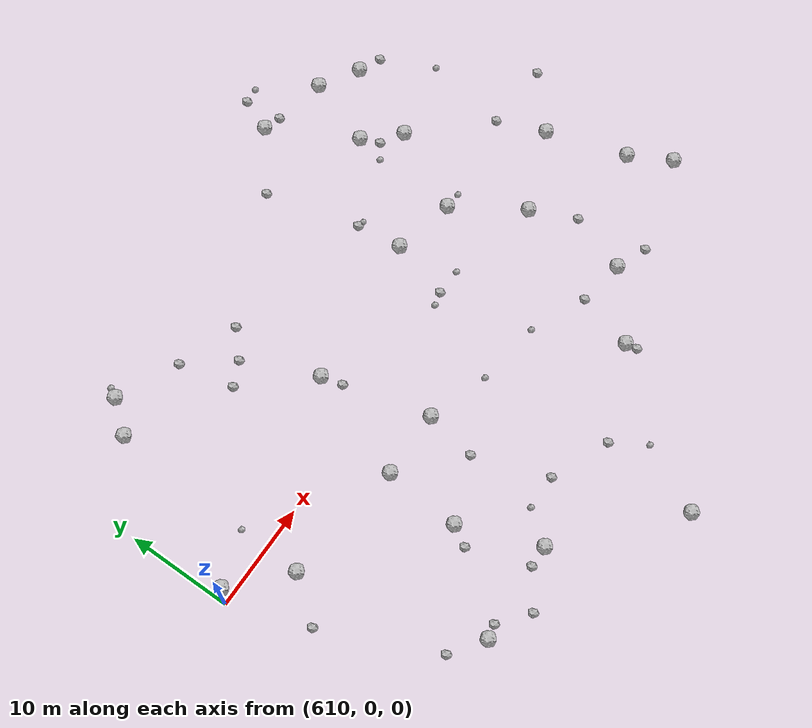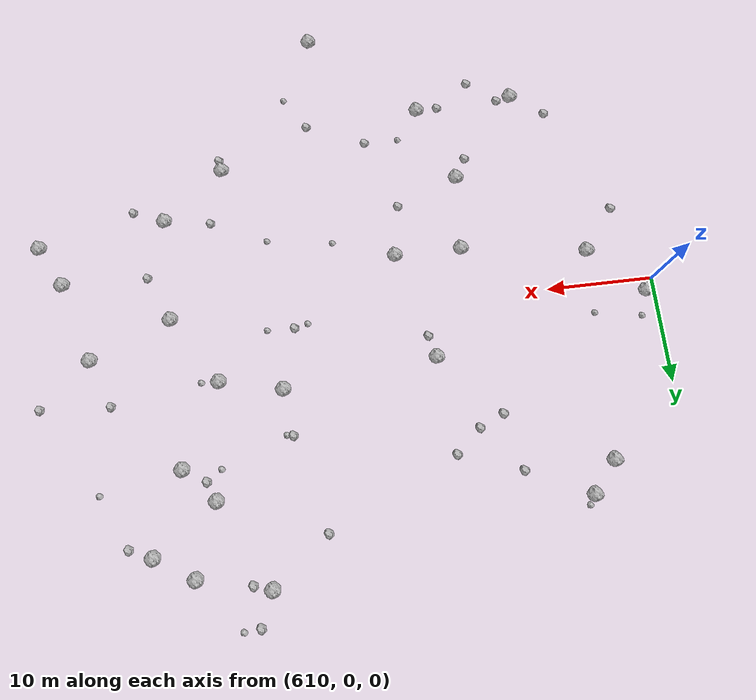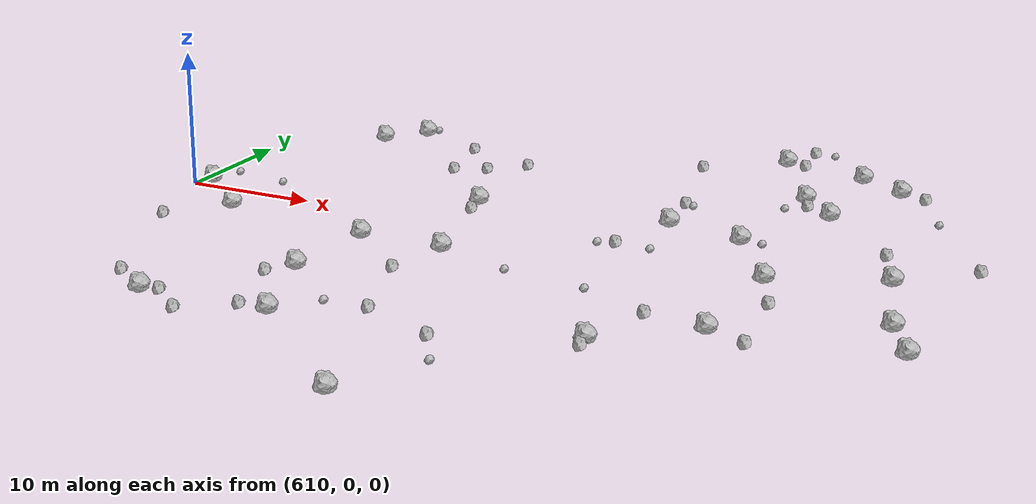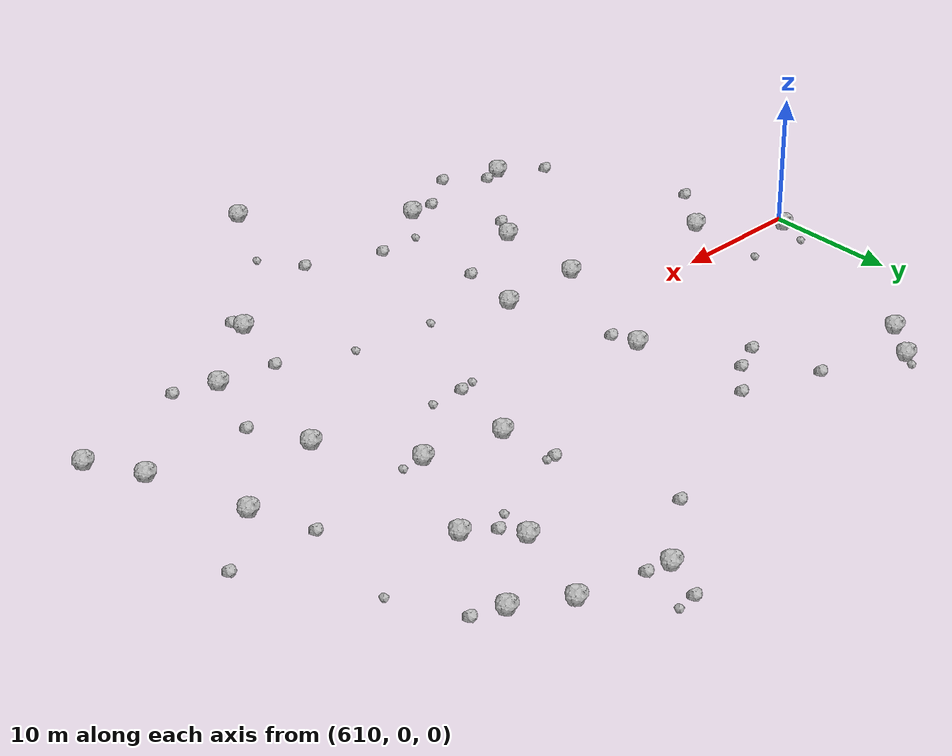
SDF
<sdf version="1.6">
 <world name="default">
  <include><uri>model://sun</uri></include>
  <model name="rock1_16_3">
   <include><uri>model://rock1</uri><pose>648.3884785140481 24.194638994427088 0.5 0 0 0</pose></include>
  </model>
  <model name="rock1_16_4">
   <include><uri>model://rock1</uri><pose>649.8411638818388 -15.506490115909688 0.5 0 0 0</pose></include>
  </model>
  <model name="rock1_16_5">
   <include><uri>model://rock1</uri><pose>615.7950789279809 -3.410759789819817 0.5 0 0 0</pose></include>
  </model>
  <model name="rock1_16_6">
   <include><uri>model://rock1</uri><pose>616.8282982376857 16.416985327546264 0.5 0 0 0</pose></include>
  </model>
  <model name="rock1_16_7">
   <include><uri>model://rock1</uri><pose>619.166712382354 19.24776664352867 0.5 0 0 0</pose></include>
  </model>
  <model name="rock1_16_8">
   <include><uri>model://rock1</uri><pose>655.7159503677343 -10.832111417545715 0.5 0 0 0</pose></include>
  </model>
  <model name="rock1_16_9">
   <include><uri>model://rock1</uri><pose>645.8304600728529 6.75570913092497 0.5 0 0 0</pose></include>
  </model>
  <model name="rock1_16_10">
   <include><uri>model://rock1</uri><pose>654.9735122611563 22.621531247574538 0.5 0 0 0</pose></include>
  </model>
  <model name="rock1_16_11">
   <include><uri>model://rock1</uri><pose>655.5375925492898 13.039243736290217 0.5 0 0 0</pose></include>
  </model>
  <model name="rock1_16_12">
   <include><uri>model://rock1</uri><pose>655.7546407298496 -0.9777118139477778 0.5 0 0 0</pose></include>
  </model>
  <model name="rock1_16_13">
   <include><uri>model://rock1</uri><pose>629.9987073909678 -19.82261858357929 0.5 0 0 0</pose></include>
  </model>
  <model name="rock1_16_14">
   <include><uri>model://rock1</uri><pose>658.5746936480663 20.41155067313764 0.5 0 0 0</pose></include>
  </model>
  <model name="rock1_16_15">
   <include><uri>model://rock1</uri><pose>667.8077677918902 -9.381422192922983 0.5 0 0 0</pose></include>
  </model>
  <model name="rock1_16_16">
   <include><uri>model://rock1</uri><pose>652.6730373162264 16.143231557777426 0.5 0 0 0</pose></include>
  </model>
  <model name="rock1_16_17">
   <include><uri>model://rock1</uri><pose>620.5216414817114 -20.294199065826525 0.5 0 0 0</pose></include>
  </model>
  <model name="rock1_16_18">
   <include><uri>model://rock1</uri><pose>639.9517834372962 -28.678303523594032 0.5 0 0 0</pose></include>
  </model>
  <model name="rock1_16_19">
   <include><uri>model://rock1</uri><pose>631.4161842172401 5.296913472693937 0.5 0 0 0</pose></include>
  </model>
  <model name="rock1_16_20">
   <include><uri>model://rock1</uri><pose>651.6769551715153 5.415404765229418 0.5 0 0 0</pose></include>
  </model>
  <model name="rock1_16_21">
   <include><uri>model://rock1</uri><pose>627.1116809057407 -12.236296081661841 0.5 0 0 0</pose></include>
  </model>
  <model name="rock1_16_22">
   <include><uri>model://rock1</uri><pose>627.6714200245145 -4.973390002368426 0.5 0 0 0</pose></include>
  </model>
  <model name="rock1_16_23">
   <include><uri>model://rock1</uri><pose>663.4144979351883 2.1168131176104623 0.5 0 0 0</pose></include>
  </model>
  <model name="rock1_16_24">
   <include><uri>model://rock1</uri><pose>634.0216767681508 -4.958596732596298 0.5 0 0 0</pose></include>
  </model>
  <model name="rock1_16_25">
   <include><uri>model://rock1</uri><pose>665.7359361518947 -5.478573504050473 0.5 0 0 0</pose></include>
  </model>
  <model name="rock1_16_26">
   <include><uri>model://rock1</uri><pose>610.895242356511 1.0959252429106456 0.5 0 0 0</pose></include>
  </model>
  <model name="rock2_16_0">
   <include><uri>model://rock2</uri><pose>617.3606970344214 -18.09000358247287 0.3 0 0 0</pose></include>
  </model>
  <model name="rock2_16_1">
   <include><uri>model://rock2</uri><pose>644.2355697623067 1.1267223200185654 0.3 0 0 0</pose></include>
  </model>
  <model name="rock2_16_2">
   <include><uri>model://rock2</uri><pose>643.0215142585425 20.051741804967932 0.3 0 0 0</pose></include>
  </model>
  <model name="rock2_16_3">
   <include><uri>model://rock2</uri><pose>621.8591758426857 -19.990593316403544 0.3 0 0 0</pose></include>
  </model>
  <model name="rock2_16_4">
   <include><uri>model://rock2</uri><pose>628.367260639396 12.29884497988526 0.3 0 0 0</pose></include>
  </model>
  <model name="rock2_16_5">
   <include><uri>model://rock2</uri><pose>650.0110514833751 -16.602523078272068 0.3 0 0 0</pose></include>
  </model>
  <model name="rock2_16_6">
   <include><uri>model://rock2</uri><pose>626.0509606715433 11.239811115308832 0.3 0 0 0</pose></include>
  </model>
  <model name="rock2_16_7">
   <include><uri>model://rock2</uri><pose>633.0932242036031 -9.855474735499385 0.3 0 0 0</pose></include>
  </model>
  <model name="rock2_16_8">
   <include><uri>model://rock2</uri><pose>668.1237017017165 6.2639726075000155 0.3 0 0 0</pose></include>
  </model>
  <model name="rock2_16_9">
   <include><uri>model://rock2</uri><pose>661.644188928511 6.654844058233351 0.3 0 0 0</pose></include>
  </model>
  <model name="rock2_16_10">
   <include><uri>model://rock2</uri><pose>649.6293070169964 27.2802999553019 0.3 0 0 0</pose></include>
  </model>
  <model name="rock2_16_11">
   <include><uri>model://rock2</uri><pose>627.9082812015488 -19.85350459375907 0.3 0 0 0</pose></include>
  </model>
  <model name="rock2_16_12">
   <include><uri>model://rock2</uri><pose>612.6380615950251 -7.368017743189334 0.3 0 0 0</pose></include>
  </model>
  <model name="rock2_16_13">
   <include><uri>model://rock2</uri><pose>631.8840750590352 3.2725463647757564 0.3 0 0 0</pose></include>
  </model>
  <model name="rock2_16_14">
   <include><uri>model://rock2</uri><pose>650.007267033749 23.707260334866433 0.3 0 0 0</pose></include>
  </model>
  <model name="rock2_16_15">
   <include><uri>model://rock2</uri><pose>657.6530195989592 -5.258351244251106 0.3 0 0 0</pose></include>
  </model>
  <model name="rock2_16_16">
   <include><uri>model://rock2</uri><pose>624.9763442299189 16.53156298421966 0.3 0 0 0</pose></include>
  </model>
  <model name="rock2_16_17">
   <include><uri>model://rock2</uri><pose>658.6520088661811 -12.026111537394414 0.3 0 0 0</pose></include>
  </model>
  <model name="rock2_16_18">
   <include><uri>model://rock2</uri><pose>645.2962462933746 11.118019897303064 0.3 0 0 0</pose></include>
  </model>
  <model name="rock2_16_19">
   <include><uri>model://rock2</uri><pose>653.4086862708691 14.373882759626582 0.3 0 0 0</pose></include>
  </model>
  <model name="rock2_16_20">
   <include><uri>model://rock2</uri><pose>625.9532935604266 -14.109154644362134 0.3 0 0 0</pose></include>
  </model>
  <model name="rock2_16_21">
   <include><uri>model://rock2</uri><pose>660.6431859369923 19.50292394525649 0.3 0 0 0</pose></include>
  </model>
  <model name="rock2_16_22">
   <include><uri>model://rock2</uri><pose>630.7676721669044 14.446018920879808 0.3 0 0 0</pose></include>
  </model>
  <model name="rock2_16_23">
   <include><uri>model://rock2</uri><pose>635.5432284514607 -16.877113725692936 0.3 0 0 0</pose></include>
  </model>
  <model name="rock2_16_24">
   <include><uri>model://rock2</uri><pose>624.5983363892576 -22.209098072377422 0.3 0 0 0</pose></include>
  </model>
  <model name="rock2_16_25">
   <include><uri>model://rock2</uri><pose>651.3014061149134 -10.120261479463373 0.3 0 0 0</pose></include>
  </model>
  <model name="rock2_16_26">
   <include><uri>model://rock2</uri><pose>641.1046827137679 -19.242356660723647 0.3 0 0 0</pose></include>
  </model>
  <model name="rock3_16_0">
   <include><uri>model://rock3</uri><pose>645.8553056444962 10.970627220597486 0.2 0 0 0</pose></include>
  </model>
  <model name="rock3_16_1">
   <include><uri>model://rock3</uri><pose>616.0036181405957 2.735563146111069 0.2 0 0 0</pose></include>
  </model>
  <model name="rock3_16_2">
   <include><uri>model://rock3</uri><pose>651.9816316489345 13.35801081829458 0.2 0 0 0</pose></include>
  </model>
  <model name="rock3_16_3">
   <include><uri>model://rock3</uri><pose>611.6294254416463 3.4854542948824943 0.2 0 0 0</pose></include>
  </model>
  <model name="rock3_16_4">
   <include><uri>model://rock3</uri><pose>651.1184014897904 27.388724187763202 0.2 0 0 0</pose></include>
  </model>
  <model name="rock3_16_5">
   <include><uri>model://rock3</uri><pose>646.7753303676666 1.0289668003475256 0.2 0 0 0</pose></include>
  </model>
  <model name="rock3_16_6">
   <include><uri>model://rock3</uri><pose>632.2186442990052 -16.91454634538018 0.2 0 0 0</pose></include>
  </model>
  <model name="rock3_16_7">
   <include><uri>model://rock3</uri><pose>662.9907532779218 14.531228436297013 0.2 0 0 0</pose></include>
  </model>
  <model name="rock3_16_8">
   <include><uri>model://rock3</uri><pose>639.7993617631589 -6.880388838135392 0.2 0 0 0</pose></include>
  </model>
  <model name="rock3_16_9">
   <include><uri>model://rock3</uri><pose>653.2532405460499 5.30790517632979 0.2 0 0 0</pose></include>
  </model>
  <model name="rock3_16_10">
   <include><uri>model://rock3</uri><pose>642.9479320527681 0.7961262308229458 0.2 0 0 0</pose></include>
  </model>
  <model name="rock3_16_11">
   <include><uri>model://rock3</uri><pose>646.0265878468633 -7.767784802929153 0.2 0 0 0</pose></include>
  </model>
  <model name="rock3_16_12">
   <include><uri>model://rock3</uri><pose>643.0505124637807 -22.45430923752338 0.2 0 0 0</pose></include>
  </model>
  <model name="rock3_16_13">
   <include><uri>model://rock3</uri><pose>619.6271231932415 20.14820382394396 0.2 0 0 0</pose></include>
  </model>
 </world>
</sdf>
